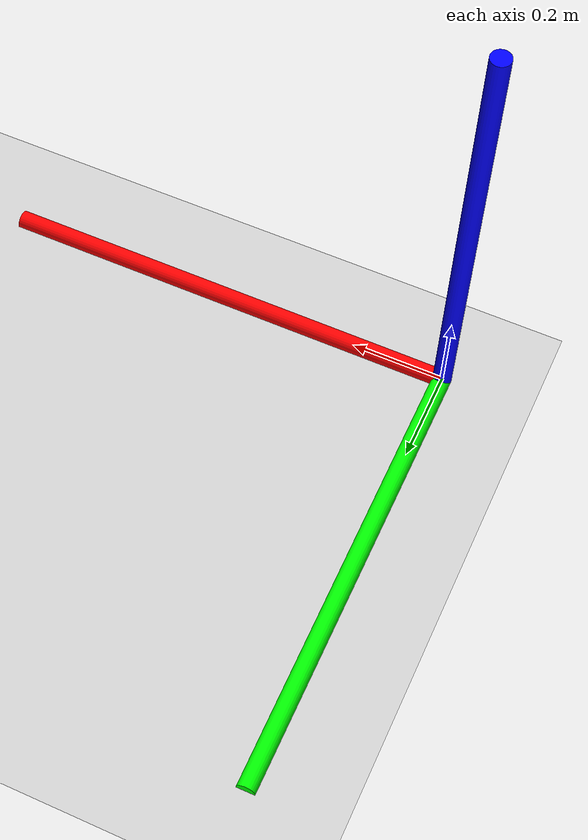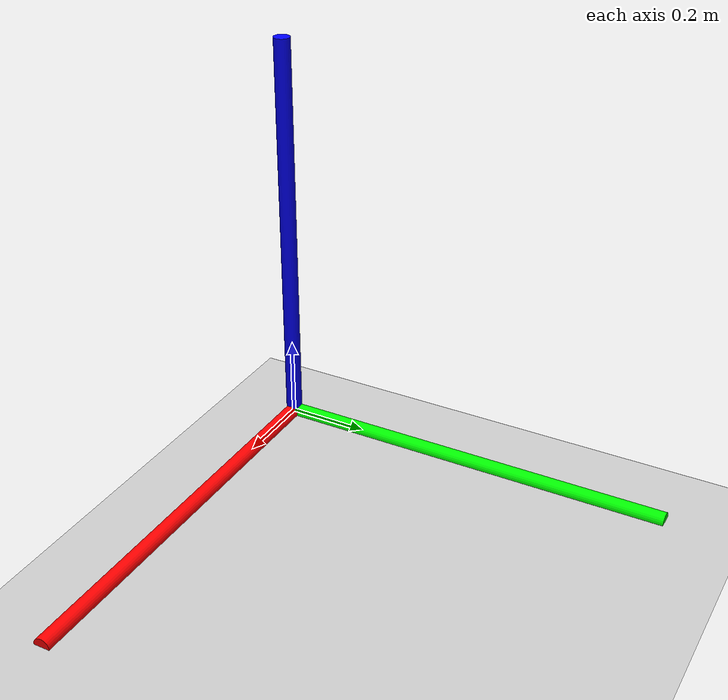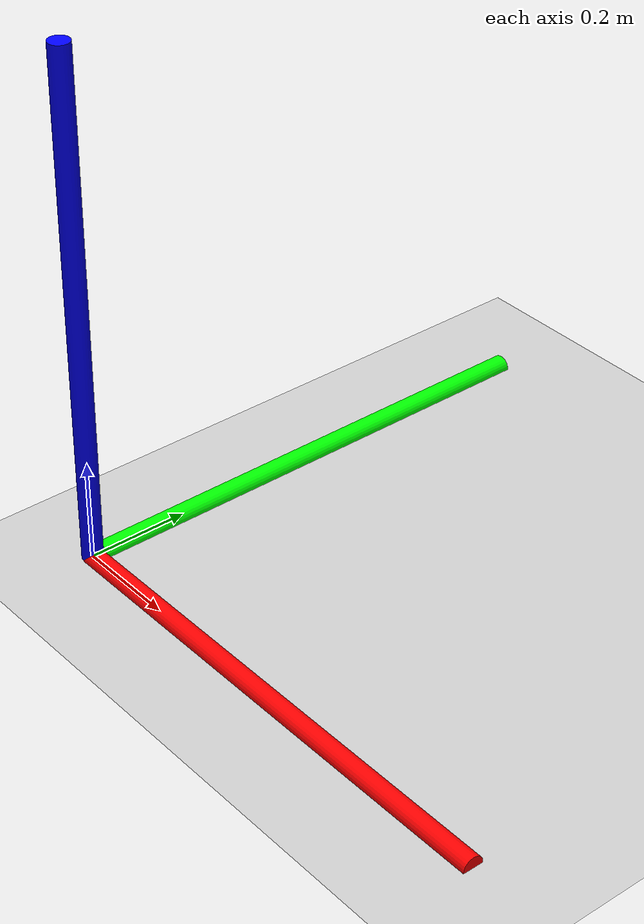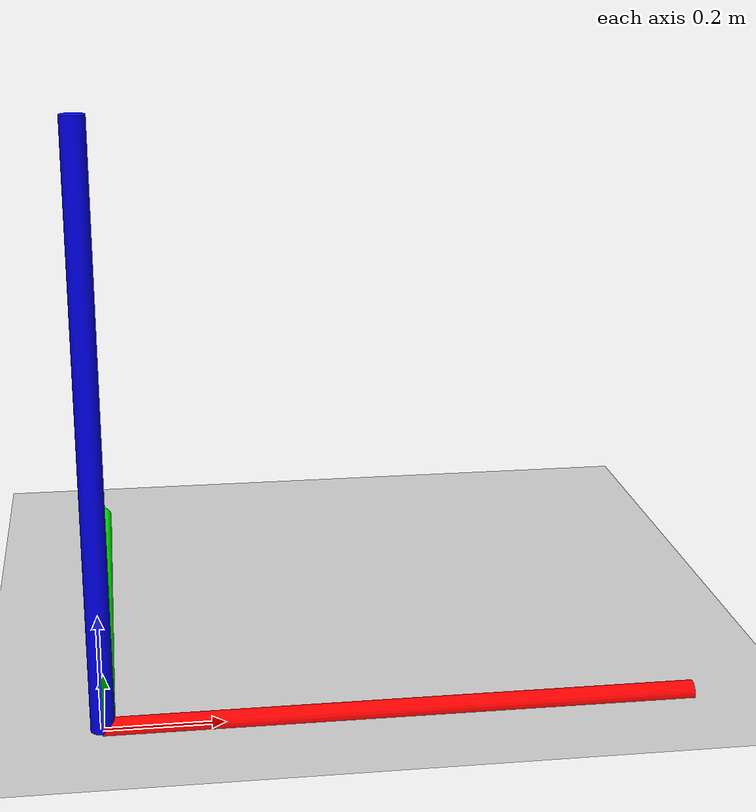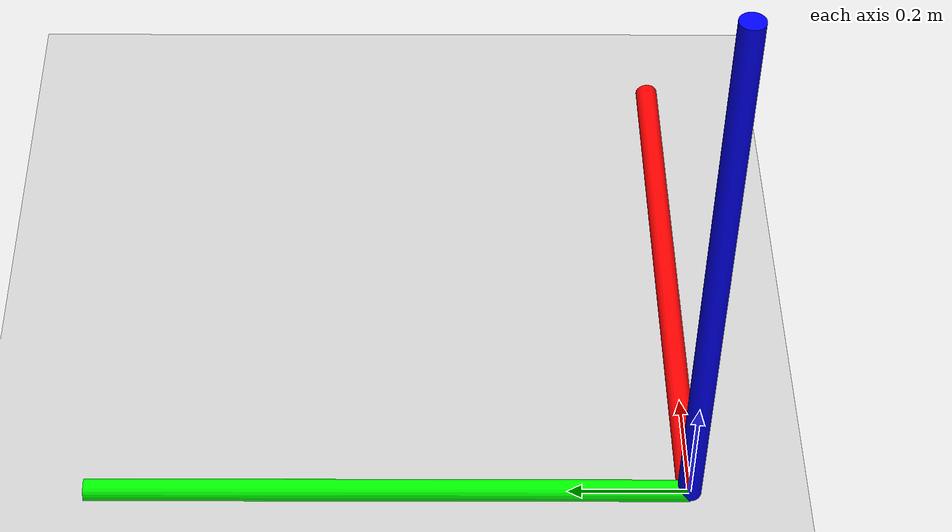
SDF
<sdf version="1.6">
 <world name="demo">
  <model name="ground_plane">
   <static>true</static>
   <link name="link">
    <collision name="collision"><geometry><plane><normal>0 0 1</normal></plane></geometry></collision>
    <visual name="visual">
     <geometry><plane><normal>0 0 1</normal><size>100 100</size></plane></geometry>
     <material>
      <ambient>0.8 0.8 0.8 1</ambient>
      <diffuse>0.8 0.8 0.8 1</diffuse>
      <specular>0.8 0.8 0.8 1</specular>
     </material>
    </visual>
   </link>
  </model>
  <model name="origin_axes">
   <static>true</static>
   <link name="linkX">
    <visual name="x_axis">
     <pose>0.5 0 0 0 1.57 0</pose>
     <geometry><cylinder><radius>0.02</radius><length>1</length></cylinder></geometry>
     <material><ambient>1 0 0 1</ambient><diffuse>1 0 0 1</diffuse></material>
    </visual>
   </link>
   <link name="linkY">
    <visual name="y_axis">
     <pose>0 0.5 0 -1.57 0 0</pose>
     <geometry><cylinder><radius>0.02</radius><length>1</length></cylinder></geometry>
     <material><ambient>0 1 0 1</ambient><diffuse>0 1 0 1</diffuse></material>
    </visual>
   </link>
   <link name="linkZ">
    <visual name="z_axis">
     <pose>0 0 0.5 0 0 1.57</pose>
     <geometry><cylinder><radius>0.02</radius><length>1</length></cylinder></geometry>
     <material><ambient>0 0 1 1</ambient><diffuse>0 0 1 1</diffuse></material>
    </visual>
   </link>
  </model>
 </world>
</sdf>
